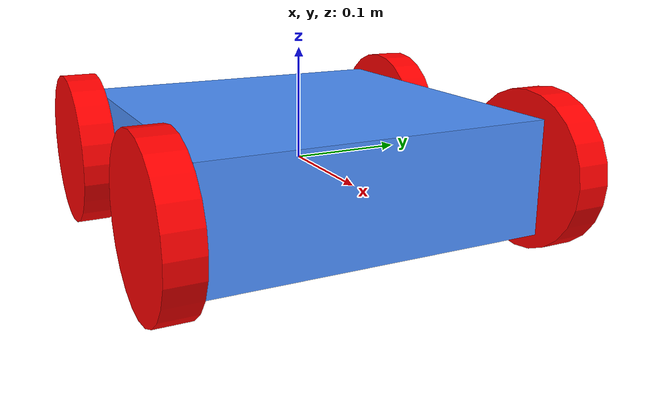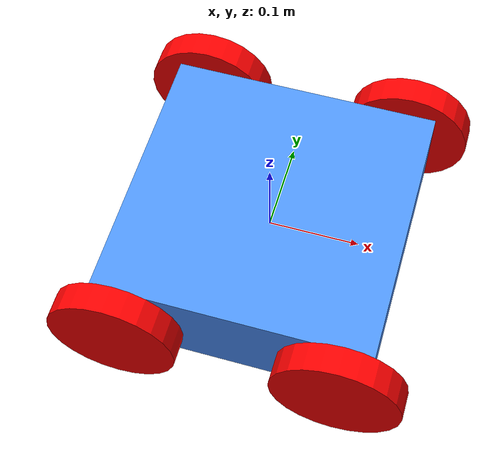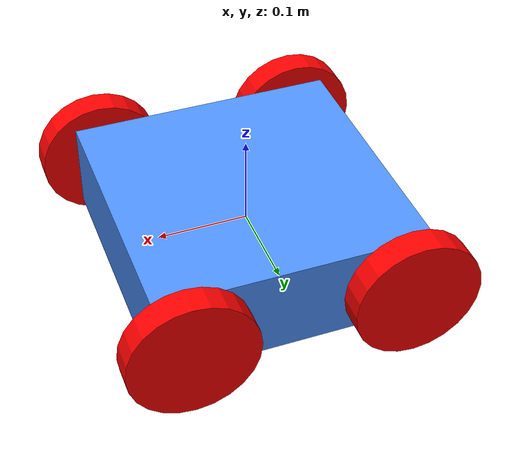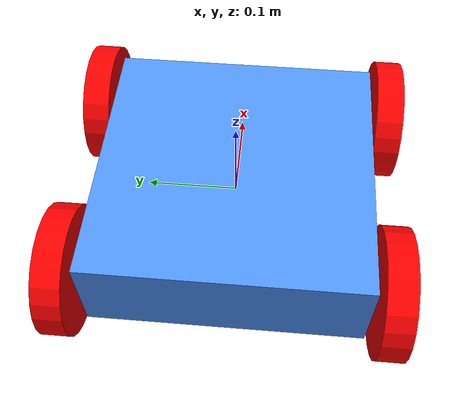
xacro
<?xml version="1.0"?>

<robot xmlns:xacro="http://www.ros.org/wiki/xacro" name="4wheelrobot">

  <!-- Color Macros -->
  <material name="red">
    <color rgba="1.0 0 0 1.0"/>
  </material>
  <material name="blue">
    <color rgba="0.3 0.57 1. 1."/>
  </material>

  <!-- Base Properties -->
  <xacro:property name="body_length" value="0.3" />
  <xacro:property name="body_width" value="0.3" />
  <xacro:property name="body_height" value="0.1" />
  <xacro:property name="ground_offset" value="0.04" />

  <!-- Wheel Properties -->
  <xacro:property name="wheelbase" value="0.3" />
  <xacro:property name="wheel_radius" value="0.07" />
  <xacro:property name="wheel_length" value="0.03" />

  <!-- Base Link -->
  <link name="base_link">
    <visual>
      <origin xyz="0 0 0"/>
      <geometry>
        <box size="${body_length} ${body_width} ${body_height}"/>
      </geometry>
      <material name="blue"/>
    </visual>
    <collision>
        <origin xyz="${wheelbase/2} 0 ${ground_offset+body_height/2}" />
        <geometry>
          <box size="${body_length} ${body_width} ${body_height}"/>
        </geometry>
    </collision>
  </link>

  <!-- Front Left Wheel-->
    <link name="front_left_wheel">
    <visual>
      <geometry>
        <cylinder radius="${wheel_radius}" length="${wheel_length}"/>
      </geometry>
      <material name="red"/>
      <origin rpy="${pi/2} 0 0"/>
    </visual>
  </link>
  <joint name="base_to_front_left_wheel" type="fixed">
    <parent link="base_link"/>
    <child link="front_left_wheel"/>
    <origin xyz="0.12 0.17 0"/>
  </joint>

  <!-- Front Right Wheel -->
    <link name="front_right_wheel">
    <visual>
      <geometry>
        <cylinder radius="${wheel_radius}" length="${wheel_length}"/>
      </geometry>
      <material name="red"/>
      <origin rpy="${pi/2} 0 0"/>
    </visual>
  </link>
  <joint name="base_to_front_right_wheel" type="fixed">
    <parent link="base_link"/>
    <child link="front_right_wheel"/>
    <origin xyz="0.12 -0.17 0"/>
  </joint>

    <!-- Back Left Wheel-->
  <link name="back_left_wheel">
    <visual>
      <geometry>
        <cylinder radius="${wheel_radius}" length="${wheel_length}"/>
      </geometry>
      <material name="red"/>
      <origin rpy="${pi/2} 0 0"/>
    </visual>
  </link>
  <joint name="base_to_back_left_wheel" type="fixed">
    <parent link="base_link"/>
    <child link="back_left_wheel"/>
    <origin xyz="-0.12 0.17 0"/>
  </joint>

  <!-- Back Right Wheel-->
  <link name="back_right_wheel">
    <visual>
      <geometry>
        <cylinder radius="${wheel_radius}" length="${wheel_length}"/>
      </geometry>
      <material name="red"/>
      <origin rpy="${pi/2} 0 0"/>
    </visual>
  </link>
  <joint name="base_to_back_right_wheel" type="fixed">
    <parent link="base_link"/>
    <child link="back_right_wheel"/>
    <origin xyz="-0.12 -0.17 0"/>
  </joint>

  <!-- Distance sensor Left-->
  <link name="left_distance_sensor">
  </link>
  <joint name="base_to_left_distance_sensor" type="fixed">
    <parent link="base_link"/>
    <child link="left_distance_sensor"/>
    <origin xyz="0.13 0.06 0" rpy="0 0 0.3"/>
  </joint>

  <!-- Distance sensor Right-->
  <link name="right_distance_sensor">
  </link>
  <joint name="base_to_right_distance_sensor" type="fixed">
    <parent link="base_link"/>
    <child link="right_distance_sensor"/>
    <origin xyz="0.13 -0.06 0" rpy="0 0 -0.3"/>
  </joint>

  <!-- Lidar above on base_link-->
  <link name="lidar">
  </link>
  <joint name="base_to_lidar" type="fixed">
    <parent link="base_link"/>
    <child link="lidar"/>
    <origin xyz="0.09 0 0.08"/>
  </joint>

  <!-- nav_link of type "continuous"-->
  <link name="nav_link">
  </link>
  <joint name="base_to_nav_link" type="fixed">
    <parent link="base_link"/>
    <child link="nav_link"/>
  </joint>

  <!-- IMU link on base_link-->
  <link name="imu">
  </link>
  <joint name="base_to_imu" type="fixed">
    <parent link="base_link"/>
    <child link="imu"/>
    <origin xyz="0 0 0"/>
  </joint>

  <!-- GPS link on base_link-->
  <link name="gps">
  </link>
  <joint name="base_to_gps" type="fixed">
    <parent link="base_link"/>
    <child link="gps"/>
    <origin xyz="0 0 0"/>
  </joint>

</robot>
